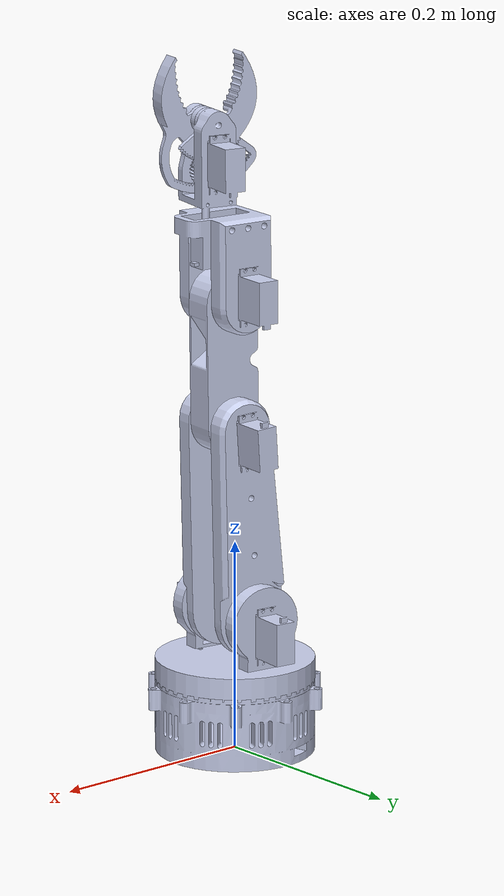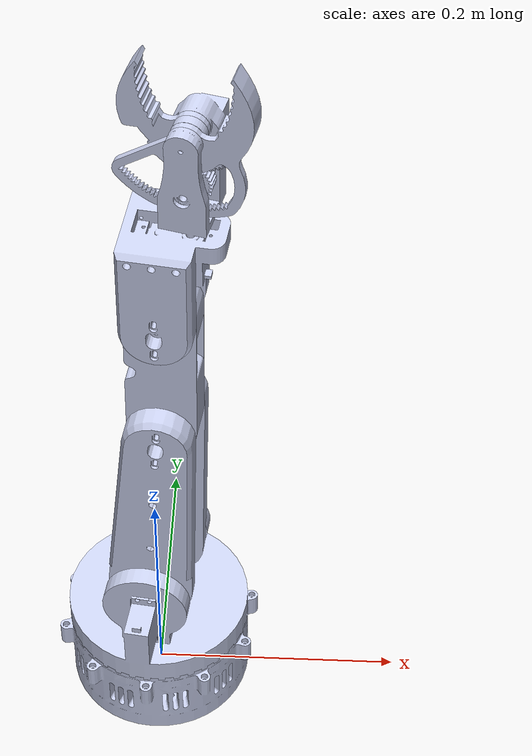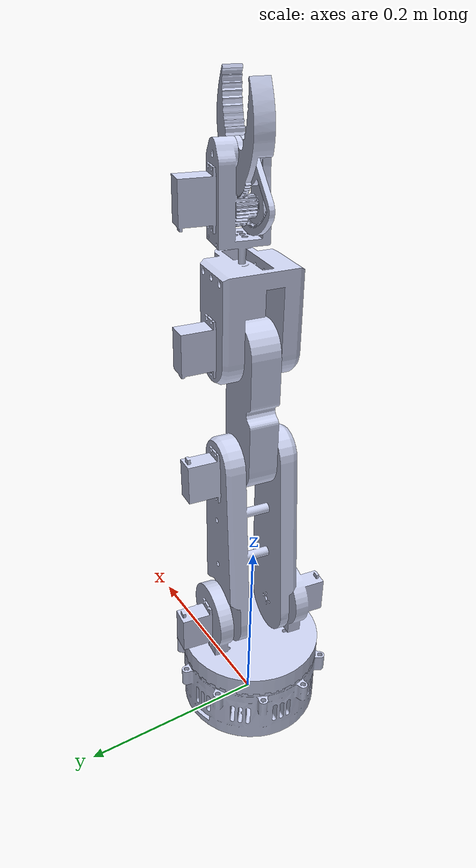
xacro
<?xml version="1.0" encoding="utf-8"?>
<!-- Auto-generated from rotatedauto.urdf + ros2_control/gz plugin. Source of truth for Gazebo. -->
<robot name="rotatedauto" xmlns:xacro="http://www.ros.org/wiki/xacro">
  <!-- World anchor + ground footprint; base_link is stood upright (arm -Y -> +Z) and lifted onto the floor. -->
  <link
    name="world" />
  <link
    name="base_footprint" />
  <joint
    name="world_to_footprint"
    type="fixed">
    <origin
      xyz="0 0 0"
      rpy="0 0 0" />
    <parent
      link="world" />
    <child
      link="base_footprint" />
  </joint>
  <joint
    name="base_footprint_to_base"
    type="fixed">
    <origin
      xyz="0 0 0.09"
      rpy="-1.5708 0 0" />
    <parent
      link="base_footprint" />
    <child
      link="base_link" />
  </joint>
  <link
    name="base_link">
    <inertial>
      <origin
        xyz="3.45163930153973E-05 -0.000785015033666168 -0.0571090387432575"
        rpy="0 0 0" />
      <mass
        value="0.612624196035198" />
      <inertia
        ixx="0.00104057382181815"
        ixy="-1.47166594398916E-06"
        ixz="-1.80561556343222E-07"
        iyy="0.00106913963546052"
        iyz="6.39936526460991E-07"
        izz="0.0020494663114152" />
    </inertial>
    <visual>
      <origin
        xyz="0 0 0"
        rpy="0 0 0" />
      <geometry>
        <mesh
          filename="package://rotatedauto/meshes/base_link.STL" />
      </geometry>
      <material
        name="">
        <color
          rgba="0.792156862745098 0.819607843137255 0.933333333333333 1" />
      </material>
    </visual>
    <collision>
      <origin
        xyz="0 0 0"
        rpy="0 0 0" />
      <geometry>
        <mesh
          filename="package://rotatedauto/meshes/base_link.STL" />
      </geometry>
    </collision>
  </link>
  <link
    name="l1">
    <inertial>
      <origin
        xyz="0.00799384464764848 -9.41073481146524E-05 5.05844262983888E-06"
        rpy="0 0 0" />
      <mass
        value="0.412047798150532" />
      <inertia
        ixx="0.000928404022931925"
        ixy="-1.91649283868352E-07"
        ixz="1.03015013255724E-08"
        iyy="0.000518397240681584"
        iyz="1.70013016470992E-06"
        izz="0.000549935104581139" />
    </inertial>
    <visual>
      <origin
        xyz="0 0 0"
        rpy="0 0 0" />
      <geometry>
        <mesh
          filename="package://rotatedauto/meshes/l1.STL" />
      </geometry>
      <material
        name="">
        <color
          rgba="0.792156862745098 0.819607843137255 0.933333333333333 1" />
      </material>
    </visual>
    <collision>
      <origin
        xyz="0 0 0"
        rpy="0 0 0" />
      <geometry>
        <mesh
          filename="package://rotatedauto/meshes/l1.STL" />
      </geometry>
    </collision>
  </link>
  <joint
    name="j1"
    type="continuous">
    <origin
      xyz="0 0 0"
      rpy="3.0629 0 -1.5708" />
    <parent
      link="base_link" />
    <child
      link="l1" />
    <axis
      xyz="1 0 0" />
    <!-- MG995 servo @6V: stall torque 15 kg-cm = 1.47 N·m; no-load 0.13 s/60deg = 8.05 rad/s -->
    <limit
      effort="1.47"
      velocity="8.05" />
    <dynamics damping="0.05" friction="0.05"/>
  </joint>
  <link
    name="l2">
    <inertial>
      <origin
        xyz="-0.0977775255050925 -0.00646119707077256 0.00270158011766901"
        rpy="0 0 0" />
      <mass
        value="0.496010213924852" />
      <inertia
        ixx="0.000178689315928175"
        ixy="-0.000101836384895985"
        ixz="-1.64227883684855E-06"
        iyy="0.00171305355616528"
        iyz="-1.0852199984749E-07"
        izz="0.00185159928895766" />
    </inertial>
    <visual>
      <origin
        xyz="0 0 0"
        rpy="0 0 0" />
      <geometry>
        <mesh
          filename="package://rotatedauto/meshes/l2.STL" />
      </geometry>
      <material
        name="">
        <color
          rgba="0.792156862745098 0.819607843137255 0.933333333333333 1" />
      </material>
    </visual>
    <collision>
      <origin
        xyz="0 0 0"
        rpy="0 0 0" />
      <geometry>
        <mesh
          filename="package://rotatedauto/meshes/l2.STL" />
      </geometry>
    </collision>
  </link>
  <joint
    name="j2"
    type="revolute">
    <origin
      xyz="0.04205 0 0"
      rpy="-3.0879 -6.2052E-05 -3.1404" />
    <parent
      link="l1" />
    <child
      link="l2" />
    <axis
      xyz="0 0 1" />
    <!-- TWO MG995 servos on j2 @6V: 2 x 1.47 = 2.94 N·m; no-load 8.05 rad/s; travel +/-90deg -->
    <limit
      lower="-1.5708"
      upper="1.5708"
      effort="2.94"
      velocity="8.05" />
    <dynamics damping="0.05" friction="0.05"/>
  </joint>
  <link
    name="l3">
    <inertial>
      <origin
        xyz="-0.00208321551742808 -0.0554794178115117 0.000238443804988416"
        rpy="0 0 0" />
      <mass
        value="0.243053670555902" />
      <inertia
        ixx="0.000533828526222675"
        ixy="-1.65337914352172E-05"
        ixz="-1.80265656509772E-08"
        iyy="7.26410262028623E-05"
        iyz="2.54785358090794E-08"
        izz="0.000572156672793709" />
    </inertial>
    <visual>
      <origin
        xyz="0 0 0"
        rpy="0 0 0" />
      <geometry>
        <mesh
          filename="package://rotatedauto/meshes/l3.STL" />
      </geometry>
      <material
        name="">
        <color
          rgba="0.792156862745098 0.819607843137255 0.933333333333333 1" />
      </material>
    </visual>
    <collision>
      <origin
        xyz="0 0 0"
        rpy="0 0 0" />
      <geometry>
        <mesh
          filename="package://rotatedauto/meshes/l3.STL" />
      </geometry>
    </collision>
  </link>
  <joint
    name="j3"
    type="revolute">
    <origin
      xyz="-0.183649470740158 -0.0121356663129733 0"
      rpy="0 0 -1.52898088222841" />
    <parent
      link="l2" />
    <child
      link="l3" />
    <axis
      xyz="0 0 1" />
    <!-- MG995 servo @6V: 1.47 N·m / 8.05 rad/s; travel +/-90deg -->
    <limit
      lower="-1.5708"
      upper="1.5708"
      effort="1.47"
      velocity="8.05" />
    <dynamics damping="0.05" friction="0.05"/>
  </joint>
  <link
    name="l4">
    <inertial>
      <origin
        xyz="-0.000394374351686404 0.00144455097160109 -0.0337686814103804"
        rpy="0 0 0" />
      <mass
        value="0.381416921085215" />
      <inertia
        ixx="0.000349560240552801"
        ixy="1.6940658945086E-20"
        ixz="1.0410624174425E-06"
        iyy="0.000273848932102221"
        iyz="3.76678743344276E-08"
        izz="0.000112118352597873" />
    </inertial>
    <visual>
      <origin
        xyz="0 0 0"
        rpy="0 0 0" />
      <geometry>
        <mesh
          filename="package://rotatedauto/meshes/l4.STL" />
      </geometry>
      <material
        name="">
        <color
          rgba="0.792156862745098 0.819607843137255 0.933333333333333 1" />
      </material>
    </visual>
    <collision>
      <origin
        xyz="0 0 0"
        rpy="0 0 0" />
      <geometry>
        <mesh
          filename="package://rotatedauto/meshes/l4.STL" />
      </geometry>
    </collision>
  </link>
  <joint
    name="j4"
    type="revolute">
    <origin
      xyz="-0.00297223967681405 -0.117462401607083 0"
      rpy="0.181773398369719 -1.57079631189374 -1.78487790419712" />
    <parent
      link="l3" />
    <child
      link="l4" />
    <axis
      xyz="1 0 0" />
    <!-- MG995 servo @6V: 1.47 N·m / 8.05 rad/s; travel +/-90deg -->
    <limit
      lower="-1.5708"
      upper="1.5708"
      effort="1.47"
      velocity="8.05" />
    <dynamics damping="0.05" friction="0.05"/>
  </joint>
  <link
    name="l5">
    <inertial>
      <origin
        xyz="1.76943876217805E-11 -0.0153083577816068 -0.059281114368264"
        rpy="0 0 0" />
      <mass
        value="0.0979788719174206" />
      <inertia
        ixx="4.55048725493735E-05"
        ixy="-6.44882689864726E-15"
        ixz="-6.68284086685763E-13"
        iyy="4.61267068197987E-05"
        iyz="1.92815060113569E-06"
        izz="1.35440423695337E-05" />
    </inertial>
    <visual>
      <origin
        xyz="0 0 0"
        rpy="0 0 0" />
      <geometry>
        <mesh
          filename="package://rotatedauto/meshes/l5.STL" />
      </geometry>
      <material
        name="">
        <color
          rgba="0.792156862745098 0.819607843137255 0.933333333333333 1" />
      </material>
    </visual>
    <collision>
      <origin
        xyz="0 0 0"
        rpy="0 0 0" />
      <geometry>
        <mesh
          filename="package://rotatedauto/meshes/l5.STL" />
      </geometry>
    </collision>
  </link>
  <joint
    name="j5"
    type="continuous">
    <origin
      xyz="0.00431003521761511 0.0206851212743065 -0.07445"
      rpy="0 0 1.68158513269406" />
    <parent
      link="l4" />
    <child
      link="l5" />
    <axis
      xyz="0 0 1" />
    <!-- MG995 servo @6V: 1.47 N·m / 8.05 rad/s; continuous rotation -->
    <limit
      effort="1.47"
      velocity="8.05" />
    <dynamics damping="0.05" friction="0.05"/>
  </joint>
  <link
    name="l6r">
    <inertial>
      <origin
        xyz="-0.0181710942909363 -0.00272181116049123 -0.0104996856618303"
        rpy="0 0 0" />
      <mass
        value="0.0295401711799883" />
      <inertia
        ixx="3.75664389596774E-05"
        ixy="3.4127205865121E-07"
        ixz="-3.78504365614721E-06"
        iyy="4.51402552859558E-05"
        iyz="2.69982668135981E-06"
        izz="9.04604180358892E-06" />
    </inertial>
    <visual>
      <origin
        xyz="0 0 0"
        rpy="0 0 0" />
      <geometry>
        <mesh
          filename="package://rotatedauto/meshes/l6r.STL" />
      </geometry>
      <material
        name="">
        <color
          rgba="0.792156862745098 0.819607843137255 0.933333333333333 1" />
      </material>
    </visual>
    <collision>
      <origin
        xyz="0 0 0"
        rpy="0 0 0" />
      <geometry>
        <mesh
          filename="package://rotatedauto/meshes/l6r.STL" />
      </geometry>
    </collision>
  </link>
  <joint
    name="j6r"
    type="continuous">
    <origin
      xyz="0 0 -0.094339964782384"
      rpy="0 0.495427955427081 -3.14159265358979" />
    <parent
      link="l5" />
    <child
      link="l6r" />
    <axis
      xyz="0 1 0" />
    <!-- MG995 servo @6V: 1.47 N·m / 8.05 rad/s -->
    <limit
      effort="1.47"
      velocity="8.05" />
    <dynamics damping="0.05" friction="0.05"/>
    <!-- follower: mirrors the driver j6l at the 1.13:2.36 reverse gear ratio -->
    <mimic
      joint="j6l"
      multiplier="-2.0885"
      offset="0" />
  </joint>
  <link
    name="l6l">
    <inertial>
      <origin
        xyz="0.0260082538049205 0.00252851999352315 -0.0074747378916018"
        rpy="0 0 0" />
      <mass
        value="0.0235862116962031" />
      <inertia
        ixx="1.20446137578521E-05"
        ixy="1.1525330011469E-06"
        ixz="7.71045930271547E-06"
        iyy="2.057888386215E-05"
        iyz="-1.3006840509167E-06"
        izz="9.73475111379412E-06" />
    </inertial>
    <visual>
      <origin
        xyz="0 0 0"
        rpy="0 0 0" />
      <geometry>
        <mesh
          filename="package://rotatedauto/meshes/l6l.STL" />
      </geometry>
      <material
        name="">
        <color
          rgba="0.792156862745098 0.819607843137255 0.933333333333333 1" />
      </material>
    </visual>
    <collision>
      <origin
        xyz="0 0 0"
        rpy="0 0 0" />
      <geometry>
        <mesh
          filename="package://rotatedauto/meshes/l6l.STL" />
      </geometry>
    </collision>
  </link>
  <joint
    name="j6l"
    type="revolute">
    <origin
      xyz="0 0 -0.094339964782384"
      rpy="0 0.0671805777502923 -3.14159265358979" />
    <parent
      link="l5" />
    <child
      link="l6l" />
    <axis
      xyz="0 1 0" />
    <!-- MG995 servo @6V: 1.47 N·m / 8.05 rad/s; gripper driver travel (observed in jsp) -->
    <limit
      lower="-0.51"
      upper="0.288"
      effort="1.47"
      velocity="8.05" />
    <dynamics damping="0.05" friction="0.05"/>
  </joint>

  <!-- ===================== ros2_control (Gazebo system) ===================== -->
  <ros2_control name="GazeboSimSystem" type="system">
    <hardware>
      <plugin>gz_ros2_control/GazeboSimSystem</plugin>
    </hardware>
    <joint name="j1">
      <command_interface name="position"/>
      <state_interface name="position"/>
      <state_interface name="velocity"/>
      <state_interface name="effort"/>
    </joint>
    <joint name="j2">
      <command_interface name="position"/>
      <state_interface name="position"/>
      <state_interface name="velocity"/>
      <state_interface name="effort"/>
    </joint>
    <joint name="j3">
      <command_interface name="position"/>
      <state_interface name="position"/>
      <state_interface name="velocity"/>
      <state_interface name="effort"/>
    </joint>
    <joint name="j4">
      <command_interface name="position"/>
      <state_interface name="position"/>
      <state_interface name="velocity"/>
      <state_interface name="effort"/>
    </joint>
    <joint name="j5">
      <command_interface name="position"/>
      <state_interface name="position"/>
      <state_interface name="velocity"/>
      <state_interface name="effort"/>
    </joint>
    <!-- gripper driver -->
    <joint name="j6l">
      <command_interface name="position"/>
      <state_interface name="position"/>
      <state_interface name="velocity"/>
      <state_interface name="effort"/>
    </joint>
    <joint name="j6r">
      <state_interface name="position"/>
      <state_interface name="velocity"/>
    </joint>
  </ros2_control>

  <!-- ===================== Gazebo plugin ===================== -->
  <gazebo>
    <plugin filename="gz_ros2_control-system"
            name="gz_ros2_control::GazeboSimROS2ControlPlugin">
      <parameters>$(find rotatedauto)/config/controllers.yaml</parameters>
    </plugin>
  </gazebo>
</robot>
